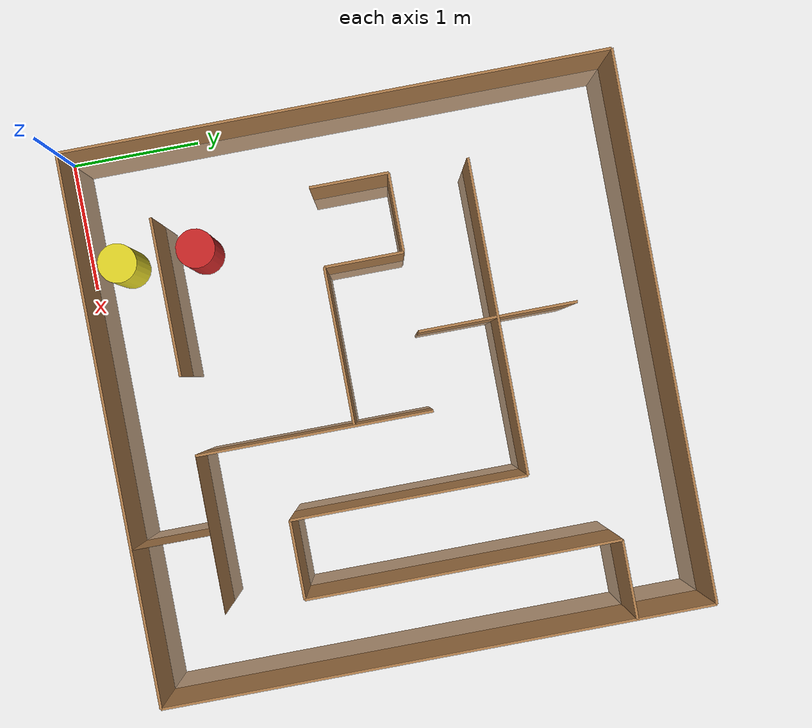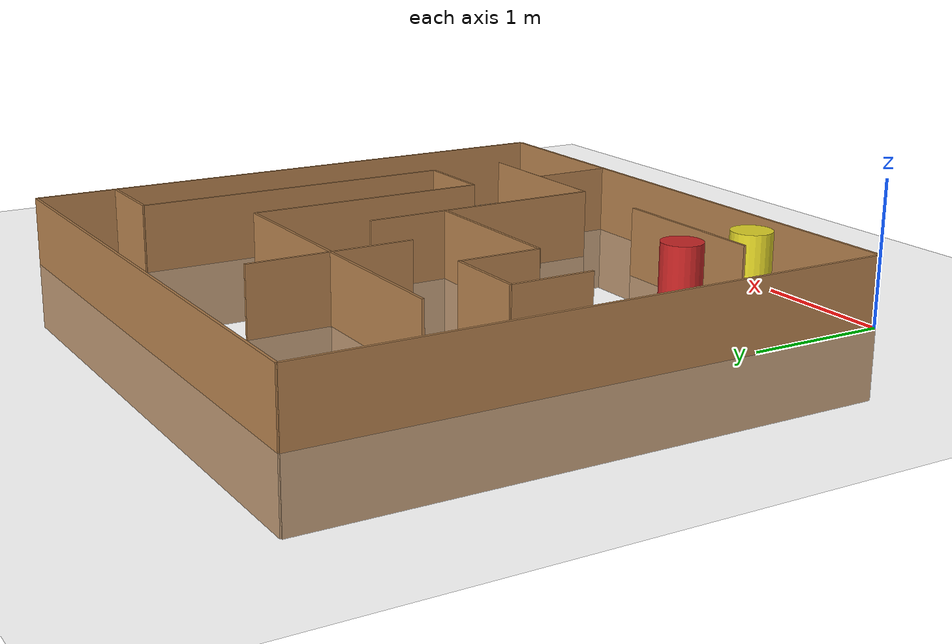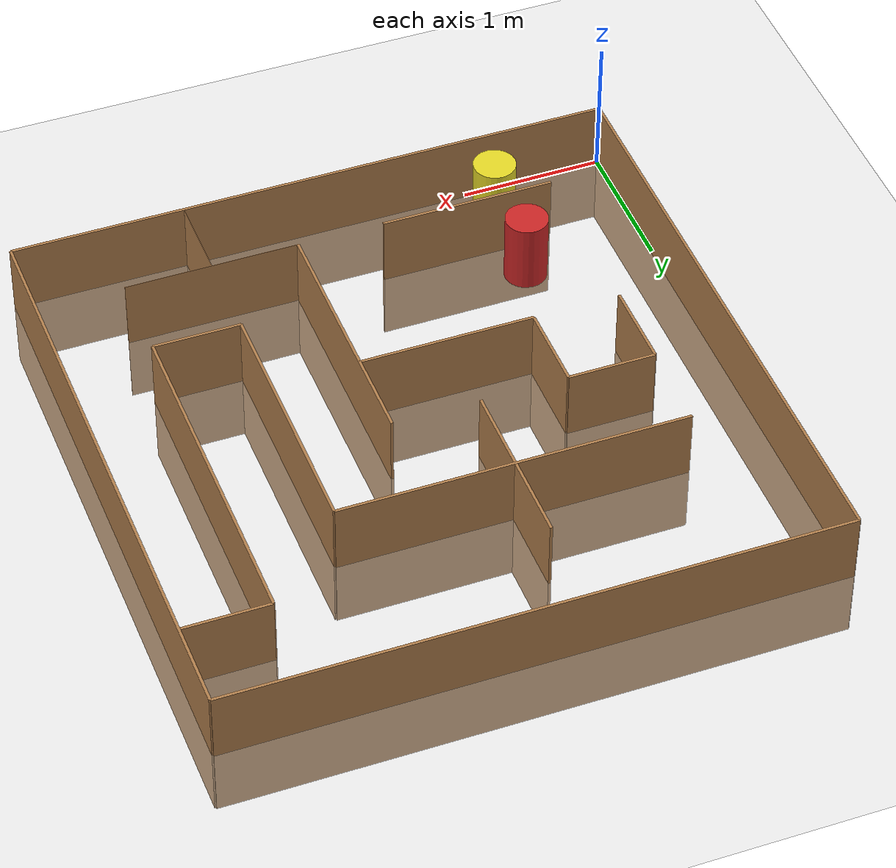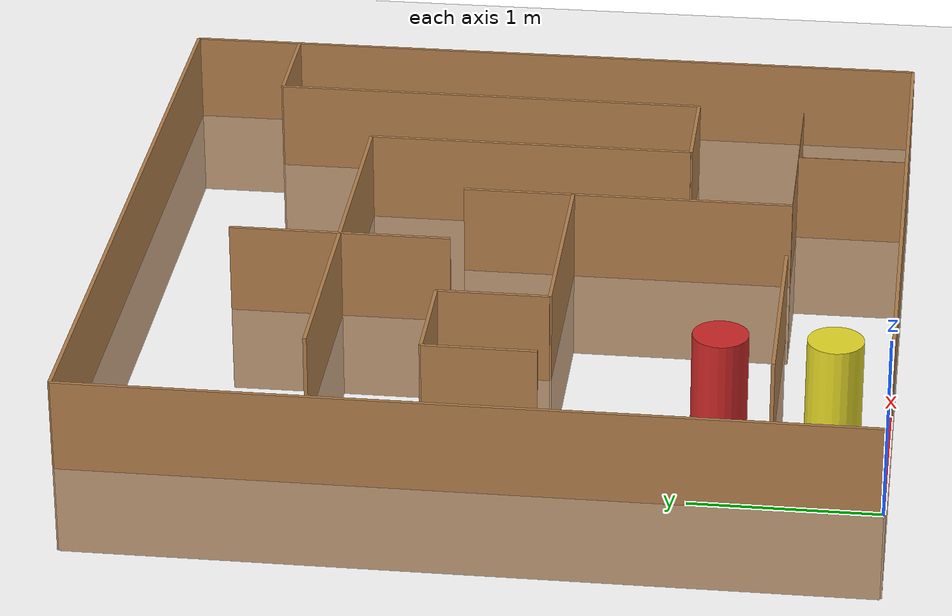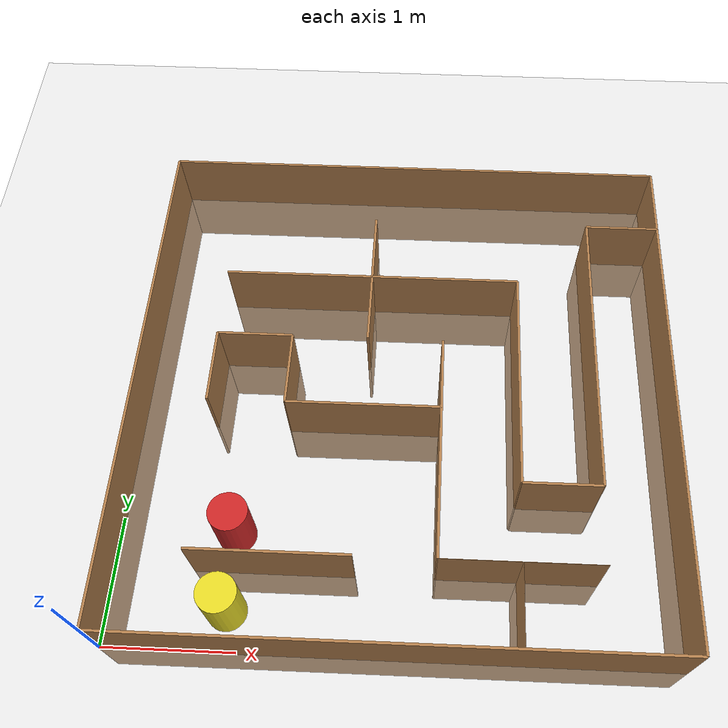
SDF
<sdf version='1.4'>
  <world name='default'>
    <!-- A global light source -->
    <include>
      <uri>model://sun</uri>
    </include>

    <!-- A ground plane -->
    <include>
      <uri>model://ground_plane</uri>
    </include>

    <physics type="ode">
      <real_time_update_rate>500.0</real_time_update_rate>
      <max_step_size>0.002</max_step_size>
      <real_time_factor>1</real_time_factor>
      <ode>
        <solver>
          <type>quick</type>
          <iters>150</iters>
          <precon_iters>0</precon_iters>
          <sor>1.400000</sor>
          <use_dynamic_moi_rescaling>1</use_dynamic_moi_rescaling>
        </solver>
        <constraints>
          <cfm>0.00001</cfm>
          <erp>0.2</erp>
          <contact_max_correcting_vel>2000.000000</contact_max_correcting_vel>
          <contact_surface_layer>0.01000</contact_surface_layer>
        </constraints>
      </ode>
    </physics>

    <!-- Load model -->
    <include>
      <uri>model://eced3901_lab5</uri>
    </include>

    <model name='obstacle'>
      <pose frame=''>0 0 0 0 -0 0</pose>
      <link name='obstacle'>
        <collision name='obstacle_1'>
          <pose>0.9 0.9 0.25 0 0 0</pose>
          <geometry>
            <cylinder>
              <radius>0.15</radius>
              <length>0.5</length>
            </cylinder>
          </geometry>
          <max_contacts>10</max_contacts>
          <surface>
            <bounce/>
            <friction>
              <ode/>
            </friction>
            <contact>
              <ode/>
            </contact>
          </surface>
        </collision>

        <visual name='obstacle_1'>
         <pose>0.9 0.9 0.25 0 0 0</pose>
          <geometry>
            <cylinder>
              <radius>0.15</radius>
              <length>0.5</length>
            </cylinder>
          </geometry>
          <material>
            <script>
              <uri>file://media/materials/scripts/gazebo.material</uri>
              <name>Gazebo/Red</name>
            </script>
          </material>
        </visual>

        <collision name='obstacle_2'>
          <pose>0.9 0.3 0.25 0 0 0</pose>
          <geometry>
            <cylinder>
              <radius>0.15</radius>
              <length>0.5</length>
            </cylinder>
          </geometry>
          <max_contacts>10</max_contacts>
          <surface>
            <bounce/>
            <friction>
              <ode/>
            </friction>
            <contact>
              <ode/>
            </contact>
          </surface>
        </collision>

        <visual name='obstacle_2'>
          <pose>0.9 0.3 0.25 0 0 0</pose>
          <geometry>
            <cylinder>
              <radius>0.15</radius>
              <length>0.5</length>
            </cylinder>
          </geometry>
          <material>
            <script>
              <uri>file://media/materials/scripts/gazebo.material</uri>
              <name>Gazebo/DarkYellow</name>
            </script>
          </material>
        </visual>
      </link>
      <static>1</static>
    </model>

    <scene>
      <ambient>0.4 0.4 0.4 1</ambient>
      <background>0.7 0.7 0.7 1</background>
      <shadows>true</shadows>
    </scene>

    <gui fullscreen='0'>
      <camera name='user_camera'>
	 <pose>0.9 0.9 5.0 0 1.5708 1.5708</pose>
        <view_controller>orbit</view_controller>
      </camera>
    </gui>
  </world>
</sdf>

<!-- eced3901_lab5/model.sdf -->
<sdf version='1.6'>
  <model name='eced3901_lab5'>
    <pose>0 0 0 0 -0 0</pose>
    <link name='Wall_0'>
      <collision name='Wall_0_Collision'>
        <geometry>
          <box>
            <size>1.2192 0.02 1</size>
          </box>
        </geometry>
      </collision>
      <visual name='Wall_0_Visual'>
        <geometry>
          <box>
            <size>1.2192 0.02 1</size>
          </box>
        </geometry>
        <material>
          <script>
            <uri>file://media/materials/scripts/gazebo.material</uri>
            <name>Gazebo/Wood</name>
          </script>
          <ambient>1 1 1 1</ambient>
        </material>
      </visual>
      <pose>1.2192 0.6096 0 0 -0 0</pose>
    </link>
    <link name='Wall_2'>
      <collision name='Wall_2_Collision'>
        <geometry>
          <box>
            <size>1.2192 0.002 1</size>
          </box>
        </geometry>
      </collision>
      <visual name='Wall_2_Visual'>
        <geometry>
          <box>
            <size>1.2192 0.002 1</size>
          </box>
        </geometry>
        <material>
          <script>
            <uri>file://media/materials/scripts/gazebo.material</uri>
            <name>Gazebo/Wood</name>
          </script>
          <ambient>1 1 1 1</ambient>
        </material>
      </visual>
      <pose>3.048 0.6096 0 0 -0 0</pose>
    </link>
    <link name='Wall_3'>
      <collision name='Wall_3_Collision'>
        <geometry>
          <box>
            <size>0.002 0.02 1</size>
          </box>
        </geometry>
      </collision>
      <visual name='Wall_3_Visual'>
        <geometry>
          <box>
            <size>0.002 0.6096 1</size>
          </box>
        </geometry>
        <material>
          <script>
            <uri>file://media/materials/scripts/gazebo.material</uri>
            <name>Gazebo/Wood</name>
          </script>
          <ambient>1 1 1 1</ambient>
        </material>
      </visual>
      <pose>3.048 0.3048 0 0 -0 0</pose>
    </link>
	<link name='Wall_4'>
      <collision name='Wall_4_Collision'>
        <geometry>
          <box>
            <size>0.02 1.8288 1</size>
          </box>
        </geometry>
      </collision>
      <visual name='Wall_4_Visual'>
        <geometry>
          <box>
            <size>0.02 1.8288 1</size>
          </box>
        </geometry>
        <material>
          <script>
            <uri>file://media/materials/scripts/gazebo.material</uri>
            <name>Gazebo/Wood</name>
          </script>
          <ambient>1 1 1 1</ambient>
        </material>
      </visual>
      <pose>2.4384 1.524 0 0 -0 0</pose>
    </link>
	<link name='Wall_5'>
      <collision name='Wall_5_Collision'>
        <geometry>
          <box>
            <size>1.2192 0.02 1</size>
          </box>
        </geometry>
      </collision>
      <visual name='Wall_5_Visual'>
        <geometry>
          <box>
            <size>1.2192 0.02 1</size>
          </box>
        </geometry>
        <material>
          <script>
            <uri>file://media/materials/scripts/gazebo.material</uri>
            <name>Gazebo/Wood</name>
          </script>
          <ambient>1 1 1 1</ambient>
        </material>
      </visual>
      <pose>1.8288 1.8288 0 0 -0 0</pose>
    </link>
	<link name='Wall_6'>
      <collision name='Wall_6_Collision'>
        <geometry>
          <box>
            <size>0.02 0.6096 1</size>
          </box>
        </geometry>
      </collision>
      <visual name='Wall_6_Visual'>
        <geometry>
          <box>
            <size>0.02 0.6096 1</size>
          </box>
        </geometry>
        <material>
          <script>
            <uri>file://media/materials/scripts/gazebo.material</uri>
            <name>Gazebo/Wood</name>
          </script>
          <ambient>1 1 1 1</ambient>
        </material>
      </visual>
      <pose>1.2192 2.1336  0 0 -0 0</pose>
    </link>
	<link name='Wall_7'>
      <collision name='Wall_7_Collision'>
        <geometry>
          <box>
            <size>0.02 0.6096 1</size>
          </box>
        </geometry>
      </collision>
      <visual name='Wall_7_Visual'>
        <geometry>
          <box>
            <size>0.02 0.6096 1</size>
          </box>
        </geometry>
        <material>
          <script>
            <uri>file://media/materials/scripts/gazebo.material</uri>
            <name>Gazebo/Wood</name>
          </script>
          <ambient>1 1 1 1</ambient>
        </material>
      </visual>
      <pose>0.6096 2.133600 0 0 -0 0</pose>
    </link>
	<link name='Wall_8'>
      <collision name='Wall_8_Collision'>
        <geometry>
          <box>
            <size>0.6096 0.02 1</size>
          </box>
        </geometry>
      </collision>
      <visual name='Wall_8_Visual'>
        <geometry>
          <box>
            <size>0.6096 0.02 1</size>
          </box>
        </geometry>
        <material>
          <script>
            <uri>file://media/materials/scripts/gazebo.material</uri>
            <name>Gazebo/Wood</name>
          </script>
          <ambient>1 1 1 1</ambient>
        </material>
      </visual>
      <pose>0.9144 2.4384 0 0 -0 0</pose>
    </link>
	<link name='Wall_9'>
      <collision name='Wall_9_Collision'>
        <geometry>
          <box>
            <size>2.4384 0.02 1</size>
          </box>
        </geometry>
      </collision>
      <visual name='Wall_9_Visual'>
        <geometry>
          <box>
            <size>2.4384 0.02 1</size>
          </box>
        </geometry>
        <material>
          <script>
            <uri>file://media/materials/scripts/gazebo.material</uri>
            <name>Gazebo/Wood</name>
          </script>
          <ambient>1 1 1 1</ambient>
        </material>
      </visual>
      <pose>1.8288 3.048 0 0 -0 0</pose>
    </link>
	<link name='Wall_10'>
      <collision name='Wall_10_Collision'>
        <geometry>
          <box>
            <size>0.02 1.2192 1</size>
          </box>
        </geometry>
      </collision>
      <visual name='Wall_10_Visual'>
        <geometry>
          <box>
            <size>0.02 1.2192 1</size>
          </box>
        </geometry>
        <material>
          <script>
            <uri>file://media/materials/scripts/gazebo.material</uri>
            <name>Gazebo/Wood</name>
          </script>
          <ambient>1 1 1 1</ambient>
        </material>
      </visual>
      <pose>1.8288 3.048 0 0 -0 0</pose>
    </link>
	<link name='Wall_11'>
      <collision name='Wall_11_Collision'>
        <geometry>
          <box>
            <size>0.02 1.8288 1</size>
          </box>
        </geometry>
      </collision>
      <visual name='Wall_11_Visual'>
        <geometry>
          <box>
            <size>0.02 1.8288 1</size>
          </box>
        </geometry>
        <material>
          <script>
            <uri>file://media/materials/scripts/gazebo.material</uri>
            <name>Gazebo/Wood</name>
          </script>
          <ambient>1 1 1 1</ambient>
        </material>
      </visual>
      <pose>3.048 2.1336 0 0 -0 0</pose>
    </link>
		<link name='Wall_12'>
      <collision name='Wall_12_Collision'>
        <geometry>
          <box>
            <size>0.02 2.4384 1</size>
          </box>
        </geometry>
      </collision>
      <visual name='Wall_12_Visual'>
        <geometry>
          <box>
            <size>0.02 2.4384 1</size>
          </box>
        </geometry>
        <material>
          <script>
            <uri>file://media/materials/scripts/gazebo.material</uri>
            <name>Gazebo/Wood</name>
          </script>
          <ambient>1 1 1 1</ambient>
        </material>
      </visual>
      <pose>3.6576 2.4384 0 0 -0 0</pose>
    </link>
	<link name='Wall_13'>
      <collision name='Wall_13_Collision'>
        <geometry>
          <box>
            <size>0.6096 0.02 1</size>
          </box>
        </geometry>
      </collision>
      <visual name='Wall_13_Visual'>
        <geometry>
          <box>
            <size>0.6096 0.02 1</size>
          </box>
        </geometry>
        <material>
          <script>
            <uri>file://media/materials/scripts/gazebo.material</uri>
            <name>Gazebo/Wood</name>
          </script>
          <ambient>1 1 1 1</ambient>
        </material>
      </visual>
      <pose>3.3528 1.2192 0 0 -0 0</pose>
    </link>
	<link name='Wall_14'>
      <collision name='Wall_14_Collision'>
        <geometry>
          <box>
            <size>0.6096 0.02 1</size>
          </box>
        </geometry>
      </collision>
      <visual name='Wall_14_Visual'>
        <geometry>
          <box>
            <size>0.6096 0.02 1</size>
          </box>
        </geometry>
        <material>
          <script>
            <uri>file://media/materials/scripts/gazebo.material</uri>
            <name>Gazebo/Wood</name>
          </script>
          <ambient>1 1 1 1</ambient>
        </material>
      </visual>
      <pose>3.9624 3.6576 0 0 -0 0</pose>
    </link>
	<link name='frame_0'>
      <collision name='frame_0_Collision'>
        <geometry>
          <box>
            <size>4.2672 0.02 1</size>
          </box>
        </geometry>
      </collision>
      <visual name='frame_0_Visual'>
        <geometry>
          <box>
            <size>4.2672 0.02 1</size>
          </box>
        </geometry>
        <material>
          <script>
            <uri>file://media/materials/scripts/gazebo.material</uri>
            <name>Gazebo/Wood</name>
          </script>
          <ambient>1 1 1 1</ambient>
        </material>
      </visual>
      <pose>2.1336 0 0 0 -0 0</pose>
    </link>
	<link name='frame_1'>
      <collision name='frame_1_Collision'>
        <geometry>
          <box>
            <size>4.2672 0.02 1</size>
          </box>
        </geometry>
      </collision>
      <visual name='frame_1_Visual'>
        <geometry>
          <box>
            <size>4.2672 0.02 1</size>
          </box>
        </geometry>
        <material>
          <script>
            <uri>file://media/materials/scripts/gazebo.material</uri>
            <name>Gazebo/Wood</name>
          </script>
          <ambient>1 1 1 1</ambient>
        </material>
      </visual>
      <pose>2.1336 4.2672 0 0 -0 0</pose>
    </link>
	<link name='frame_2'>
      <collision name='frame_2_Collision'>
        <geometry>
          <box>
            <size>0.02 4.2672 1</size>
          </box>
        </geometry>
      </collision>
      <visual name='frame_2_Visual'>
        <geometry>
          <box>
            <size>0.02 4.2672 1</size>
          </box>
        </geometry>
        <material>
          <script>
            <uri>file://media/materials/scripts/gazebo.material</uri>
            <name>Gazebo/Wood</name>
          </script>
          <ambient>1 1 1 1</ambient>
        </material>
      </visual>
      <pose>0 2.1336 0 0 -0 0</pose>
    </link>
	<link name='frame_3'>
      <collision name='frame_3_Collision'>
        <geometry>
          <box>
            <size>0.02 4.2672 1</size>
          </box>
        </geometry>
      </collision>
      <visual name='frame_3_Visual'>
        <geometry>
          <box>
            <size>0.02 4.2672 1</size>
          </box>
        </geometry>
        <material>
          <script>
            <uri>file://media/materials/scripts/gazebo.material</uri>
            <name>Gazebo/Wood</name>
          </script>
          <ambient>1 1 1 1</ambient>
        </material>
      </visual>
      <pose>4.2672 2.1336 0 0 -0 0</pose>
    </link>
    <static>1</static>
  </model>
</sdf>
